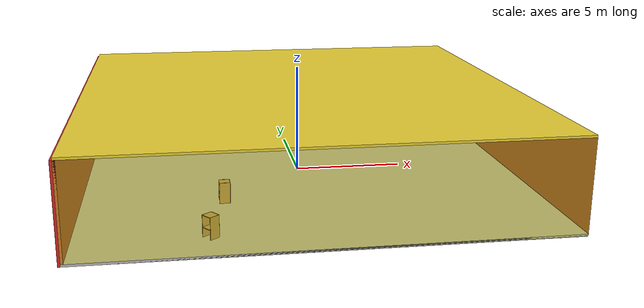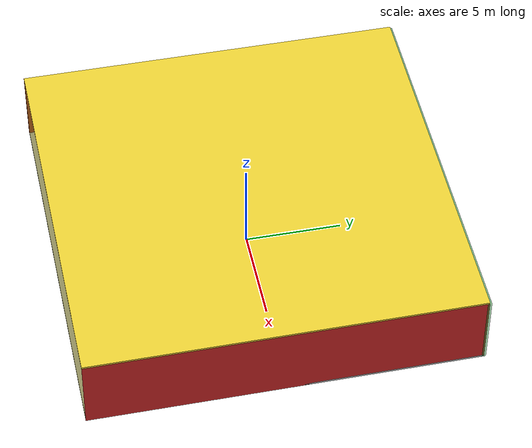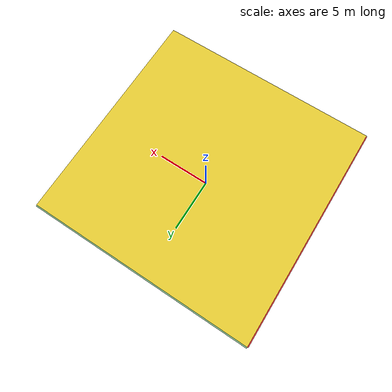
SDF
<sdf version="1.4">
 <world name="default">
  <physics type="ode">
   <max_step_size>0.001</max_step_size>
   <real_time_factor>1</real_time_factor>
   <real_time_update_rate>1000</real_time_update_rate>
   <gravity>0 0 -9.8</gravity>
  </physics>
  <scene><ambient>0.4 0.4 0.4 1</ambient><background>0.7 0.7 0.7 1</background><shadows>1</shadows></scene>
  <model name="Surrounding">
   <static>1</static>
   <link name="Ceiling">
    <collision name="Ceiling_Collision"><geometry><box><size>20 20 0.1</size></box></geometry></collision>
    <visual name="Ceiling_Visual">
     <geometry><box><size>20 20 0.1</size></box></geometry>
     <material>
      <script><uri>file://media/materials/scripts/gazebo.material</uri><name>Gazebo/ZincYellow</name></script>
     </material>
    </visual>
    <pose>0 0 4.05 0 0 0</pose>
   </link>
   <link name="Wall_South">
    <collision name="Wall_South_Collision">
     <geometry><box><size>20 0 4</size></box></geometry>
     <pose>0 0 2 0 -0 0</pose>
    </collision>
    <visual name="Wall_South_Visual">
     <pose>0 0 2 0 -0 0</pose>
     <geometry><box><size>20 0 4</size></box></geometry>
     <material>
      <script>
       <uri>file://media/materials/scripts/gazebo.material</uri>
       <name>Gazebo/YellowTransparent</name>
      </script>
     </material>
    </visual>
    <velocity_decay><linear>0</linear><angular>0</angular></velocity_decay>
    <pose>0 -10 0 0 -0 0</pose>
   </link>
   <link name="Wall_East">
    <collision name="Wall_21_Collision">
     <geometry><box><size>20 0 4</size></box></geometry>
     <pose>0 0 2 0 -0 0</pose>
    </collision>
    <visual name="Wall_21_Visual">
     <pose>0 0 2 0 -0 0</pose>
     <geometry><box><size>20 0 4</size></box></geometry>
     <material>
      <script><uri>file://media/materials/scripts/gazebo.material</uri><name>Gazebo/RedBright</name></script>
     </material>
    </visual>
    <velocity_decay><linear>0</linear><angular>0</angular></velocity_decay>
    <pose>10 0 0 0 -0 1.5708</pose>
   </link>
   <link name="Wall_North">
    <collision name="Wall_22_Collision">
     <geometry><box><size>20 0.2 4</size></box></geometry>
     <pose>0 0 2 0 -0 0</pose>
    </collision>
    <visual name="Wall_22_Visual">
     <pose>0 0 2 0 -0 0</pose>
     <geometry><box><size>20 0.2 4</size></box></geometry>
     <material>
      <script><uri>file://media/materials/scripts/gazebo.material</uri><name>Gazebo/GreenTransparent</name></script>
     </material>
    </visual>
    <velocity_decay><linear>0</linear><angular>0</angular></velocity_decay>
    <pose>0 10 0 0 -0 0</pose>
   </link>
   <link name="Wall_West">
    <collision name="Wall_23_Collision">
     <geometry><box><size>20 0.2 4</size></box></geometry>
     <pose>0 0 2 0 -0 0</pose>
    </collision>
    <visual name="Wall_23_Visual">
     <pose>0 0 2 0 -0 0</pose>
     <geometry><box><size>20 0.2 4</size></box></geometry>
     <material>
      <script><uri>file://media/materials/scripts/gazebo.material</uri><name>Gazebo/RedGlow</name></script>
     </material>
    </visual>
    <velocity_decay><linear>0</linear><angular>0</angular></velocity_decay>
    <pose>-10 0 0 0 0 -1.5708</pose>
   </link>
   <link name="Ground_link">
    <collision name="collision">
     <pose>0 0 .05 0 -0 0</pose>
     <geometry><box><size>20 20 0.1</size></box></geometry>
    </collision>
    <visual name="visual">
     <pose>0 0 .05 0 -0 0</pose>
     <geometry><box><size>20 20 0.1</size></box></geometry>
     <material>
      <script><uri>file://media/materials/scripts/gazebo.material</uri><name>Gazebo/CloudySky</name></script>
     </material>
    </visual>
   </link>
   <static>1</static>
  </model>
  <spherical_coordinates>
   <surface_model>EARTH_WGS84</surface_model>
   <latitude_deg>0</latitude_deg>
   <longitude_deg>0</longitude_deg>
   <elevation>0</elevation>
   <heading_deg>0</heading_deg>
  </spherical_coordinates>
  <light name="lightball_0" type="diffuse">
   <diffuse>0.8 0.8 0.8 1</diffuse>
   <specular>0.2 0.2 0.2 1</specular>
   <attenuation>
    <range>100</range>
    <constant>0.7</constant>
    <linear>0.01</linear>
    <quadratic>0.001</quadratic>
   </attenuation>
   <direction>-0.5 0.1 -0.9</direction>
   <pose>3.80366464513 -4.32664928698 2.54261874621 0 0 0</pose>
  </light>
  <light name="lightball_1" type="diffuse">
   <diffuse>0.8 0.8 0.8 1</diffuse>
   <specular>0.2 0.2 0.2 1</specular>
   <attenuation>
    <range>100</range>
    <constant>0.7</constant>
    <linear>0.01</linear>
    <quadratic>0.001</quadratic>
   </attenuation>
   <direction>-0.5 0.1 -0.9</direction>
   <pose>-2.55759513307 -0.999755208488 1.58168617148 0 0 0</pose>
  </light>
  <light name="lightball_2" type="diffuse">
   <diffuse>0.8 0.8 0.8 1</diffuse>
   <specular>0.2 0.2 0.2 1</specular>
   <attenuation>
    <range>100</range>
    <constant>0.7</constant>
    <linear>0.01</linear>
    <quadratic>0.001</quadratic>
   </attenuation>
   <direction>-0.5 0.1 -0.9</direction>
   <pose>2.19531550853 2.96967558383 2.34420845568 0 0 0</pose>
  </light>
  <light name="lightball_3" type="diffuse">
   <diffuse>0.8 0.8 0.8 1</diffuse>
   <specular>0.2 0.2 0.2 1</specular>
   <attenuation>
    <range>100</range>
    <constant>0.7</constant>
    <linear>0.01</linear>
    <quadratic>0.001</quadratic>
   </attenuation>
   <direction>-0.5 0.1 -0.9</direction>
   <pose>0.835182856935 4.66698187744 0.945034407159 0 0 0</pose>
  </light>
  <light name="lightball_4" type="diffuse">
   <diffuse>0.8 0.8 0.8 1</diffuse>
   <specular>0.2 0.2 0.2 1</specular>
   <attenuation>
    <range>100</range>
    <constant>0.7</constant>
    <linear>0.01</linear>
    <quadratic>0.001</quadratic>
   </attenuation>
   <direction>-0.5 0.1 -0.9</direction>
   <pose>-2.97998212456 -2.21044369921 1.48438585738 0 0 0</pose>
  </light>
  <light name="lightball_5" type="diffuse">
   <diffuse>0.8 0.8 0.8 1</diffuse>
   <specular>0.2 0.2 0.2 1</specular>
   <attenuation>
    <range>100</range>
    <constant>0.7</constant>
    <linear>0.01</linear>
    <quadratic>0.001</quadratic>
   </attenuation>
   <direction>-0.5 0.1 -0.9</direction>
   <pose>3.80100980512 -3.62268894048 1.66801843262 0 0 0</pose>
  </light>
  <include><uri>model://cabinet</uri><pose>-4.55901307369 -8.23291436455 0 0 0 0.658521329651</pose></include>
  <include><uri>model://cabinet</uri><pose>-3.80853846249 -4.36027736181 0 0 0 0.0310820960512</pose></include>
  <include>
   <uri>model://construction_cone</uri>
   <pose>-4.35465952107 4.50383566291 0 0 0 1.22507837037</pose>
  </include>
 </world>
</sdf>

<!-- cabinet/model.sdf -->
<sdf version="1.5">
  <model name="cabinet">
    <static>true</static>
    <link name="cabinet_bottom_plate">
      <inertial>
        <pose>0 0 -1 0 0 0</pose>
        <inertia>
          <ixx>2.050000</ixx>
          <ixy>0</ixy>
          <ixz>0</ixz>
          <iyy>2.050000</iyy>
          <iyz>0</iyz>
          <izz>2.050000</izz>
        </inertia>
        <mass>25.000000</mass>
      </inertial>
      <collision name="cabinet_bottom_plate_geom">
        <pose>0 0 0.010000 0 0 0</pose>
        <geometry>
          <box>
            <size>0.450000 0.450000 0.020000</size>
          </box>
        </geometry>
      </collision>
      <visual name="cabinet_bottom_plate_geom_visual">
        <pose>0 0 0.010000 0 0 0</pose>
        <geometry>
          <box>
            <size>0.450000 0.450000 0.020000</size>
          </box>
        </geometry>
        <material>
          <script>
            <uri>model://media/materials/scripts/gazebo.material</uri>
            <name>Gazebo/Wood</name>
          </script>
        </material>
      </visual>
      <collision name="cabinet_bottom_plate_geom_cabinet_back_plate">
        <pose>0.235000 0 0.510000 0 0 0</pose>
        <geometry>
          <box>
            <size>0.020000 0.450000 1.020000</size>
          </box>
        </geometry>
      </collision>
      <visual name="cabinet_bottom_plate_geom_cabinet_back_plate_visual">
        <pose>0.235000 0 0.510000 0 0 0</pose>
        <geometry>
          <box>
            <size>0.020000 0.450000 1.020000</size>
          </box>
        </geometry>
        <material>
          <script>
            <uri>model://media/materials/scripts/gazebo.material</uri>
            <name>Gazebo/Wood</name>
          </script>
        </material>
      </visual>
      <collision name="cabinet_bottom_plate_geom_cabinet_left_plate">
        <pose>0 0.235000 0.510000 0 0 0</pose>
        <geometry>
          <box>
            <size>0.450000 0.020000 1.020000</size>
          </box>
        </geometry>
      </collision>
      <visual name="cabinet_bottom_plate_geom_cabinet_left_plate_visual">
        <pose>0 0.235000 0.510000 0 0 0</pose>
        <geometry>
          <box>
            <size>0.450000 0.020000 1.020000</size>
          </box>
        </geometry>
        <material>
          <script>
            <uri>model://media/materials/scripts/gazebo.material</uri>
            <name>Gazebo/Wood</name>
          </script>
        </material>
      </visual>
      <collision name="cabinet_bottom_plate_geom_cabinet_middle_plate">
        <pose>0 0 0.510000 0 0 0</pose>
        <geometry>
          <box>
            <size>0.450000 0.450000 0.020000</size>
          </box>
        </geometry>
      </collision>
      <visual name="cabinet_bottom_plate_geom_cabinet_middle_plate_visual">
        <pose>0 0 0.510000 0 0 0</pose>
        <geometry>
          <box>
            <size>0.450000 0.450000 0.020000</size>
          </box>
        </geometry>
        <material>
          <script>
            <uri>model://media/materials/scripts/gazebo.material</uri>
            <name>Gazebo/Wood</name>
          </script>
        </material>
      </visual>
      <collision name="cabinet_bottom_plate_geom_cabinet_right_plate">
        <pose>0 -0.235000 0.510000 0 0 0</pose>
        <geometry>
          <box>
            <size>0.450000 0.020000 1.020000</size>
          </box>
        </geometry>
      </collision>
      <visual name="cabinet_bottom_plate_geom_cabinet_right_plate_visual">
        <pose>0 -0.235000 0.510000 0 0 0</pose>
        <geometry>
          <box>
            <size>0.450000 0.020000 1.020000</size>
          </box>
        </geometry>
        <material>
          <script>
            <uri>model://media/materials/scripts/gazebo.material</uri>
            <name>Gazebo/Wood</name>
          </script>
        </material>
      </visual>
      <collision name="cabinet_bottom_plate_geom_cabinet_top_plate">
        <pose>0 0 1.010000 0 0 0</pose>
        <geometry>
          <box>
            <size>0.450000 0.450000 0.020000</size>
          </box>
        </geometry>
      </collision>
      <visual name="cabinet_bottom_plate_geom_cabinet_top_plate_visual">
        <pose>0 0 1.010000 0 0 0</pose>
        <geometry>
          <box>
            <size>0.450000 0.450000 0.020000</size>
          </box>
        </geometry>
        <material>
          <script>
            <uri>model://media/materials/scripts/gazebo.material</uri>
            <name>Gazebo/Wood</name>
          </script>
        </material>
      </visual>
    </link>
  </model>
</sdf>

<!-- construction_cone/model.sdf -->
<sdf version="1.5">
  <model name="Construction Cone">
    <link name="link">
      <collision name="collision">
        <geometry>
          <mesh>
            <scale>10 10 10</scale>
            <uri>file://isr-testbed/construction_cone/meshes/construction_cone.dae</uri>
          </mesh>
        </geometry>
      </collision>
      <visual name="visual">
        <geometry>
          <mesh>
            <scale>10 10 10</scale>
            <uri>file://isr-testbed/construction_cone/meshes/construction_cone.dae</uri>
          </mesh>
        </geometry>
      </visual>
    </link>
  </model>
</sdf>
